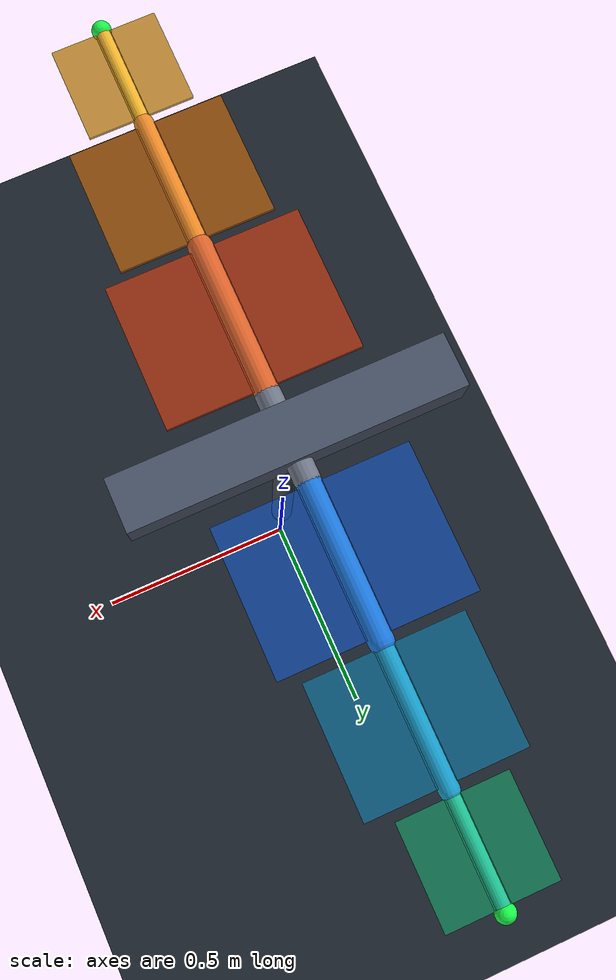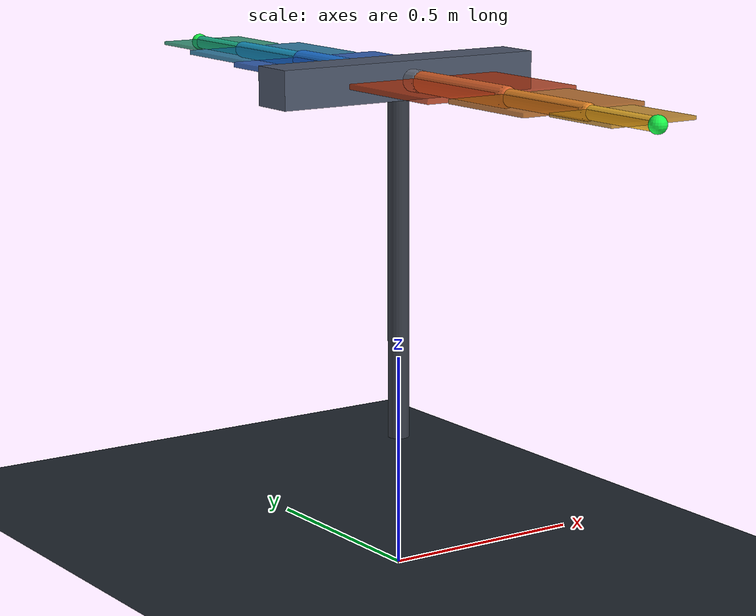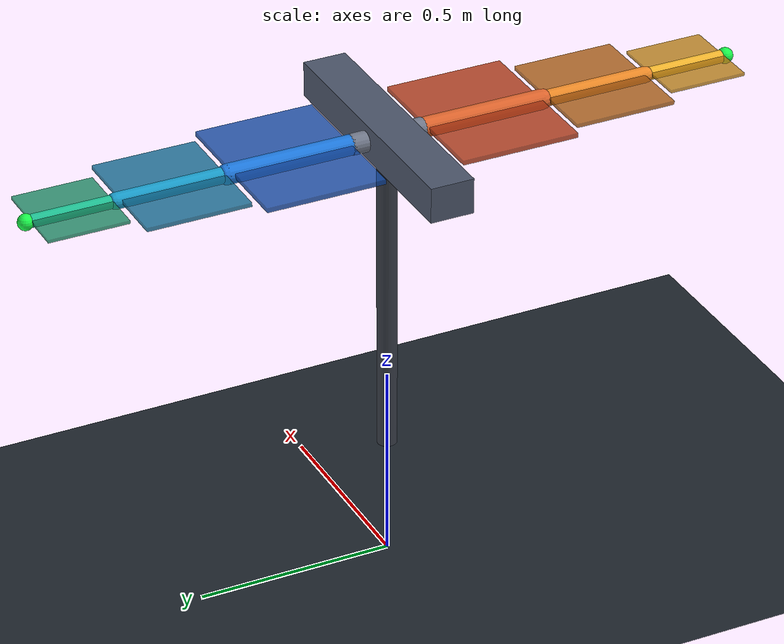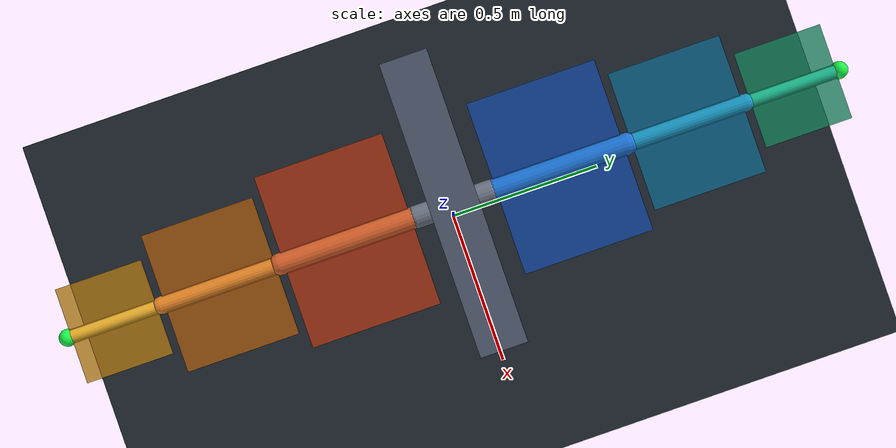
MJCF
<mujoco model="gpu_morphing_wing_gust_rejection">
  <compiler angle="radian" coordinate="local" autolimits="true"/>
  <option timestep="0.004" integrator="RK4" gravity="0 0 -9.81" iterations="80" tolerance="1e-9"/>

  <visual>
    <global offwidth="1280" offheight="720"/>
  </visual>

  <default>
    <geom condim="3" friction="0.8 0.02 0.002" solref="0.015 1.0" solimp="0.9 0.95 0.001"/>
    <joint damping="0.24" stiffness="0.35" armature="0.018" limited="true"/>
  </default>

  <worldbody>
    <light name="key" pos="0 -3 3" dir="0 1 -1"/>
    <geom name="floor" type="plane" size="3.0 2.0 0.05" rgba="0.12 0.15 0.18 1"/>

    <body name="test_stand" pos="0 0 1.16">
      <geom name="stand" type="cylinder" fromto="0 0 -0.85 0 0 0" size="0.025" mass="0.2" rgba="0.22 0.24 0.28 1"/>
      <geom name="fuselage" type="box" pos="0 0 0" size="0.34 0.055 0.045" mass="0.70" rgba="0.30 0.34 0.42 1"/>
      <site name="root_site" pos="0 0 0" size="0.018" rgba="1 0.8 0.1 1"/>

      <body name="wing_hub" pos="0 0 0">
        <joint name="root_roll" type="hinge" axis="1 0 0" range="-0.48 0.48" damping="0.34" stiffness="0.40" armature="0.030"/>
        <geom name="center_spar" type="capsule" fromto="0 -0.09 0 0 0.09 0" size="0.026" mass="0.28" rgba="0.45 0.48 0.55 1"/>

        <body name="left_inner" pos="0 0.09 0">
          <joint name="left_inner" type="hinge" axis="1 0 0" range="-0.62 0.78" damping="0.28" stiffness="0.32" armature="0.024"/>
          <geom name="left_inner_spar" type="capsule" fromto="0 0 0 0 0.32 0" size="0.025" mass="0.34" rgba="0.12 0.48 0.88 1"/>
          <geom name="left_inner_skin" type="box" pos="0 0.16 0.004" size="0.20 0.15 0.006" mass="0.12" rgba="0.10 0.32 0.68 0.86"/>
          <body name="left_mid" pos="0 0.32 0">
            <joint name="left_mid" type="hinge" axis="1 0 0" range="-0.70 0.82" damping="0.22" stiffness="0.25" armature="0.018"/>
            <geom name="left_mid_spar" type="capsule" fromto="0 0 0 0 0.28 0" size="0.020" mass="0.24" rgba="0.10 0.62 0.80 1"/>
            <geom name="left_mid_skin" type="box" pos="0 0.14 0.004" size="0.16 0.13 0.005" mass="0.08" rgba="0.08 0.44 0.60 0.84"/>
            <body name="left_tip" pos="0 0.28 0">
              <joint name="left_tip" type="hinge" axis="1 0 0" range="-0.78 0.88" damping="0.16" stiffness="0.18" armature="0.014"/>
              <geom name="left_tip_spar" type="capsule" fromto="0 0 0 0 0.22 0" size="0.016" mass="0.15" rgba="0.12 0.76 0.58 1"/>
              <geom name="left_tip_skin" type="box" pos="0 0.11 0.004" size="0.11 0.10 0.004" mass="0.05" rgba="0.10 0.56 0.40 0.82"/>
              <site name="left_tip_site" pos="0 0.22 0" size="0.020" rgba="0.1 1 0.3 1"/>
            </body>
          </body>
        </body>

        <body name="right_inner" pos="0 -0.09 0">
          <joint name="right_inner" type="hinge" axis="-1 0 0" range="-0.62 0.78" damping="0.28" stiffness="0.32" armature="0.024"/>
          <geom name="right_inner_spar" type="capsule" fromto="0 0 0 0 -0.32 0" size="0.025" mass="0.34" rgba="0.88 0.40 0.18 1"/>
          <geom name="right_inner_skin" type="box" pos="0 -0.16 0.004" size="0.20 0.15 0.006" mass="0.12" rgba="0.72 0.24 0.10 0.86"/>
          <body name="right_mid" pos="0 -0.32 0">
            <joint name="right_mid" type="hinge" axis="-1 0 0" range="-0.70 0.82" damping="0.22" stiffness="0.25" armature="0.018"/>
            <geom name="right_mid_spar" type="capsule" fromto="0 0 0 0 -0.28 0" size="0.020" mass="0.24" rgba="0.94 0.55 0.16 1"/>
            <geom name="right_mid_skin" type="box" pos="0 -0.14 0.004" size="0.16 0.13 0.005" mass="0.08" rgba="0.70 0.38 0.08 0.84"/>
            <body name="right_tip" pos="0 -0.28 0">
              <joint name="right_tip" type="hinge" axis="-1 0 0" range="-0.78 0.88" damping="0.16" stiffness="0.18" armature="0.014"/>
              <geom name="right_tip_spar" type="capsule" fromto="0 0 0 0 -0.22 0" size="0.016" mass="0.15" rgba="0.96 0.72 0.18 1"/>
              <geom name="right_tip_skin" type="box" pos="0 -0.11 0.004" size="0.11 0.10 0.004" mass="0.05" rgba="0.76 0.52 0.08 0.82"/>
              <site name="right_tip_site" pos="0 -0.22 0" size="0.020" rgba="0.1 1 0.3 1"/>
            </body>
          </body>
        </body>
      </body>
    </body>
  </worldbody>

  <actuator>
    <motor name="root_roll_motor" joint="root_roll" gear="50" ctrlrange="-1 1"/>
    <motor name="left_inner_motor" joint="left_inner" gear="34" ctrlrange="-1 1"/>
    <motor name="left_mid_motor" joint="left_mid" gear="26" ctrlrange="-1 1"/>
    <motor name="left_tip_motor" joint="left_tip" gear="18" ctrlrange="-1 1"/>
    <motor name="right_inner_motor" joint="right_inner" gear="34" ctrlrange="-1 1"/>
    <motor name="right_mid_motor" joint="right_mid" gear="26" ctrlrange="-1 1"/>
    <motor name="right_tip_motor" joint="right_tip" gear="18" ctrlrange="-1 1"/>
  </actuator>

  <sensor>
    <framepos name="left_tip_pos" objtype="site" objname="left_tip_site"/>
    <framepos name="right_tip_pos" objtype="site" objname="right_tip_site"/>
    <jointpos name="root_roll_pos" joint="root_roll"/>
    <jointvel name="root_roll_vel" joint="root_roll"/>
    <jointpos name="left_inner_pos" joint="left_inner"/>
    <jointvel name="left_inner_vel" joint="left_inner"/>
    <jointpos name="left_mid_pos" joint="left_mid"/>
    <jointvel name="left_mid_vel" joint="left_mid"/>
    <jointpos name="left_tip_pos_joint" joint="left_tip"/>
    <jointvel name="left_tip_vel" joint="left_tip"/>
    <jointpos name="right_inner_pos" joint="right_inner"/>
    <jointvel name="right_inner_vel" joint="right_inner"/>
    <jointpos name="right_mid_pos" joint="right_mid"/>
    <jointvel name="right_mid_vel" joint="right_mid"/>
    <jointpos name="right_tip_pos_joint" joint="right_tip"/>
    <jointvel name="right_tip_vel" joint="right_tip"/>
  </sensor>
</mujoco>
